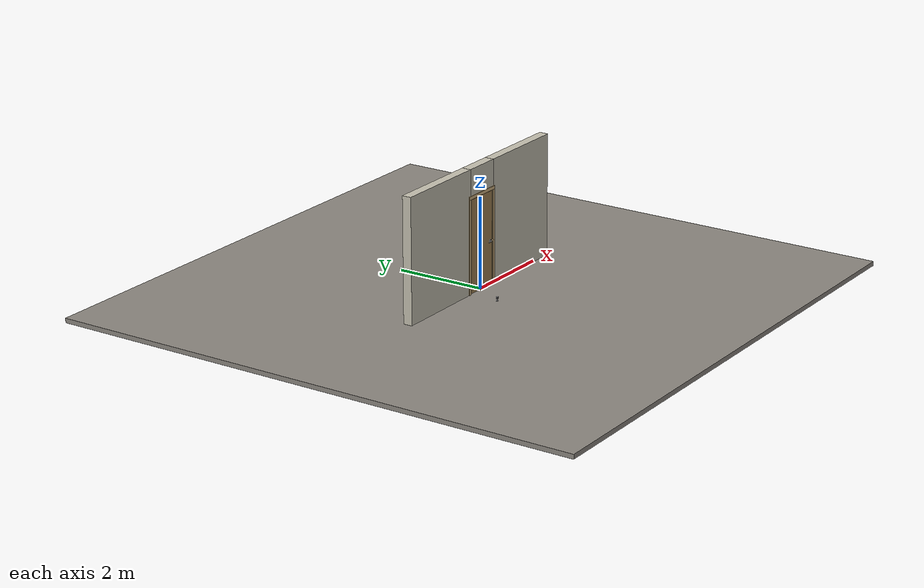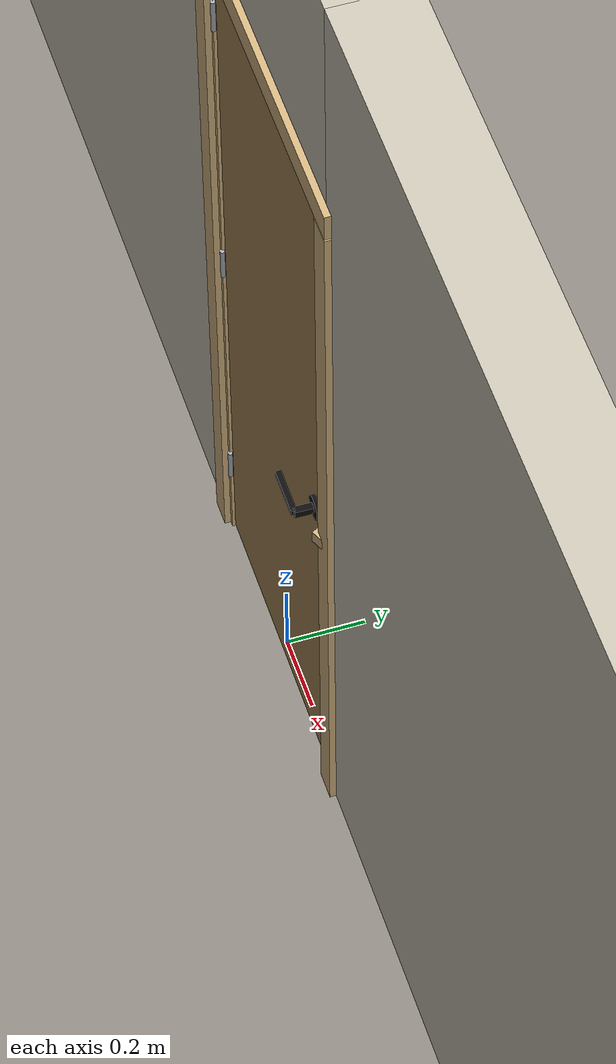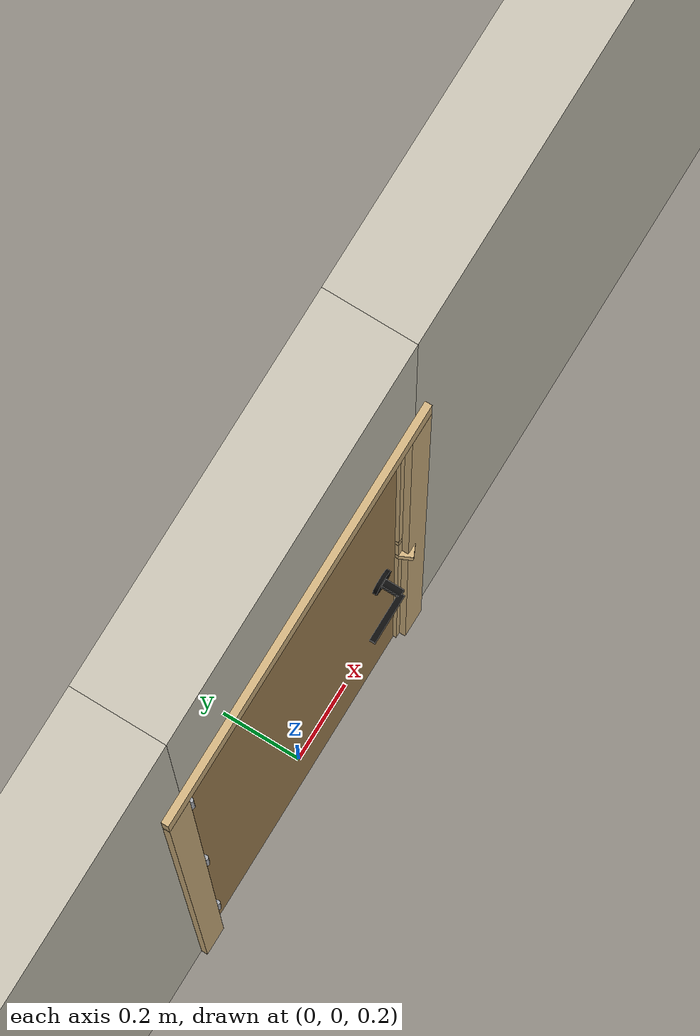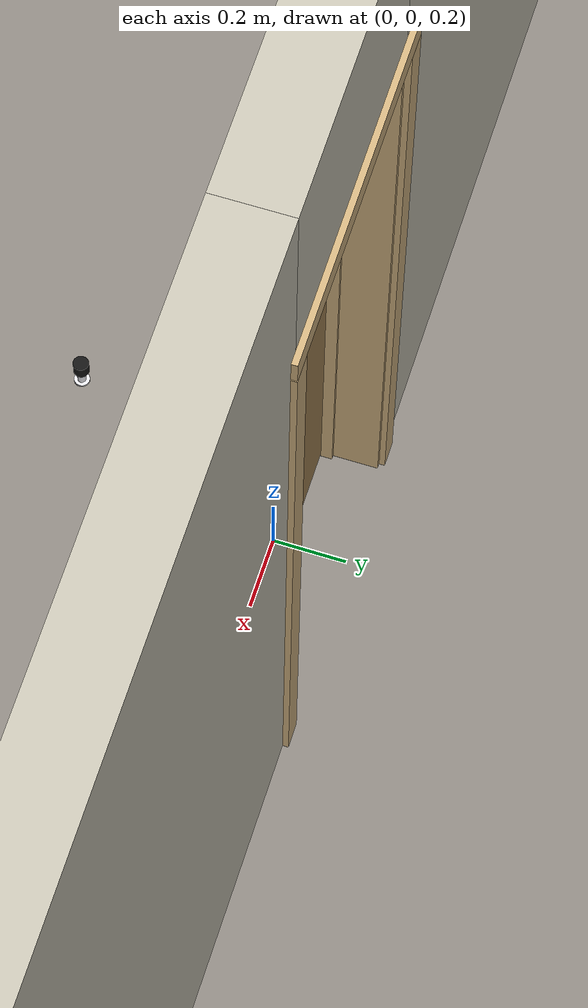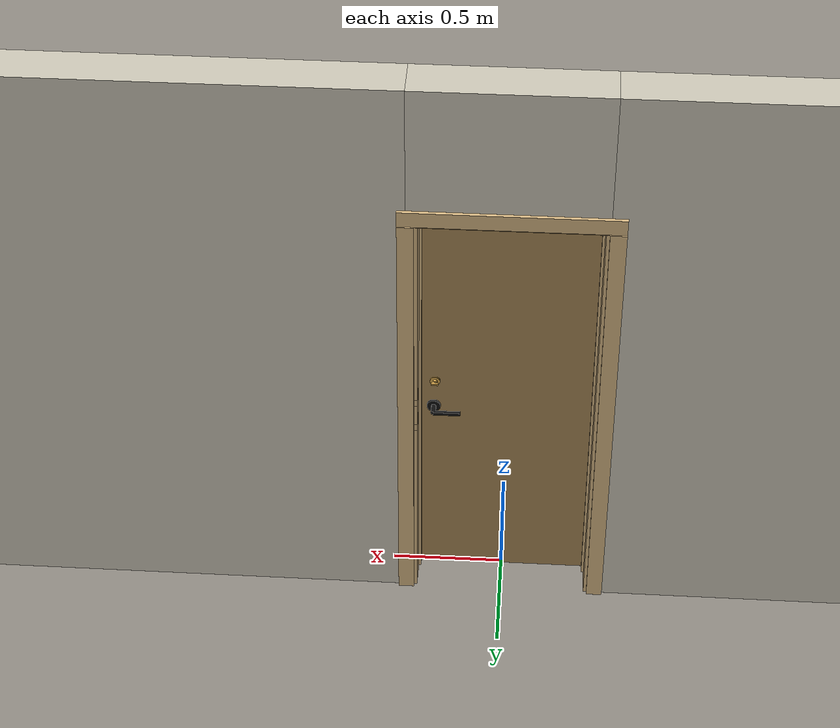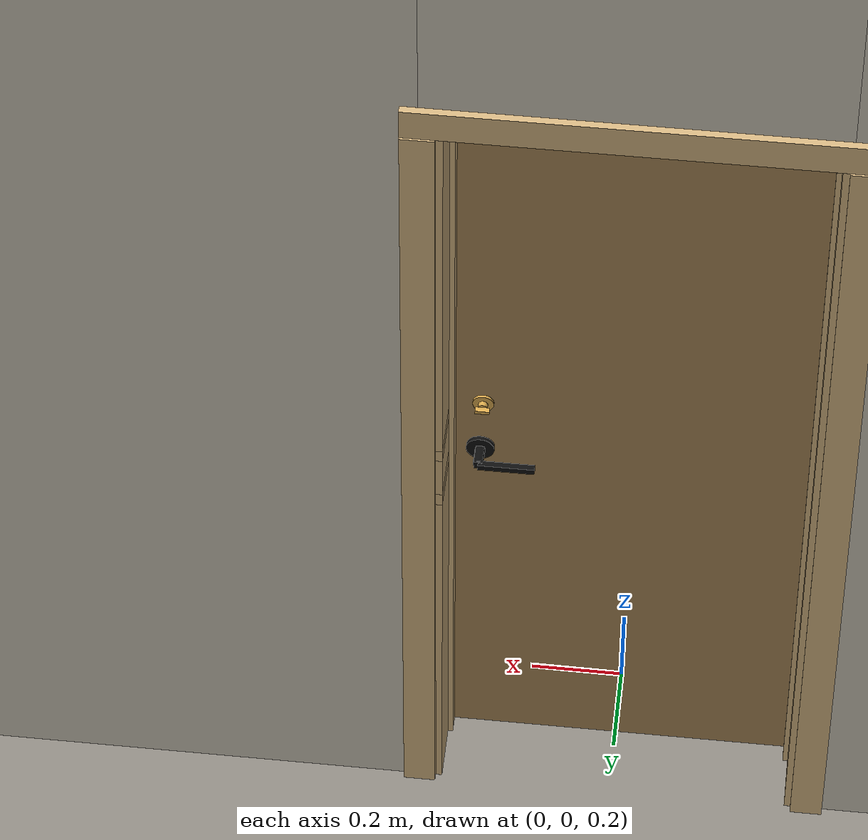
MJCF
<?xml version="1.0" ?>
<mujoco model="db0925_swing_single_full">
  <compiler angle="radian" meshdir="../../hardware" texturedir="../../textures" autolimits="true" inertiafromgeom="false"/>
  <option timestep="0.002" integrator="implicitfast" cone="elliptic" impratio="10" noslip_iterations="3">
    <flag multiccd="enable"/>
  </option>
  <size memory="16M"/>
  <default>
    <geom condim="4" solref="0.005 1" solimp="0.95 0.99 0.001"/>
    <joint solreflimit="0.005 1" solimplimit="0.95 0.99 0.001"/>
    <tendon solreflimit="0.005 1"/>
    <equality solref="0.002 1"/>
  </default>
  <visual>
    <headlight ambient="0.4 0.4 0.4" diffuse="0.7 0.7 0.7" specular="0.2 0.2 0.2"/>
    <quality shadowsize="4096"/>
    <map znear="0.01" zfar="60"/>
  </visual>
  <asset>
    <mesh name="hinge_96510cf394" file="hinge_96510cf394.obj"/>
    <mesh name="hinge_jamb_7fd4ca52b2" file="hinge_jamb_7fd4ca52b2.obj"/>
    <mesh name="lever_57205841c3" file="lever_57205841c3.obj"/>
    <mesh name="thumbturn_eb5c9899a3" file="thumbturn_eb5c9899a3.obj"/>
    <material name="mat_floor" rgba="0.55 0.53 0.5 1" specular="0.2" shininess="0.15" reflectance="0"/>
    <material name="mat_wall" rgba="0.78 0.76 0.7 1" specular="0.2" shininess="0.1" reflectance="0"/>
    <material name="mat_leaf" rgba="0.636 0.514 0.322 1" specular="0.2" shininess="0.5" reflectance="0"/>
    <material name="mat_hinge" rgba="0.65 0.66 0.68 1" specular="0.74" shininess="0.5" reflectance="0.36"/>
    <material name="mat_op_black_matte_metal" rgba="0.05 0.05 0.05 1" specular="0.38" shininess="0.3" reflectance="0.12"/>
    <material name="mat_trim" rgba="0.85 0.66 0.3 1" specular="0.8" shininess="0.75" reflectance="0.4"/>
    <material name="mat_bolt" rgba="0.85 0.66 0.3 1" specular="0.8" shininess="0.75" reflectance="0.4"/>
    <material name="mat_deadbolt" rgba="0.85 0.66 0.3 1" specular="0.8" shininess="0.75" reflectance="0.4"/>
    <material name="mat_frame" rgba="0.82 0.7 0.5 1" specular="0.2" shininess="0.45" reflectance="0"/>
    <material name="mat_bumper_stop" rgba="0.08 0.08 0.08 1" specular="0.2" shininess="0.1" reflectance="0"/>
    <material name="mat_stop_base" rgba="0.9 0.9 0.92 1" specular="0.8" shininess="0.9" reflectance="0.4"/>
    <texture name="skybox" type="skybox" builtin="gradient" rgb1="0.6 0.7 0.85" rgb2="0.9 0.92 0.95" width="256" height="256"/>
  </asset>
  <worldbody>
    <light name="sun" pos="1.5 -2.5 4" dir="-0.3 0.5 -0.8" directional="true" diffuse="0.8 0.8 0.8" specular="0.3 0.3 0.3" castshadow="true"/>
    <light name="fill" pos="-1.5 2.5 3" dir="0.3 -0.5 -0.7" directional="true" diffuse="0.35 0.35 0.4" castshadow="false"/>
    <camera name="robot_view" pos="0 -2.466687 1.734312" xyaxes="1 0 0 0 0.26963 0.962964" fovy="52"/>
    <camera name="far_view" pos="0 2.617687 1.734312" xyaxes="-1 0 0 0 -0.26963 0.962964" fovy="52"/>
    <camera name="iso" pos="1.932062 -2.059938 2.141063" xyaxes="0.741536 0.670913 0 -0.242917 0.268487 0.932151" fovy="46"/>
    <camera name="detail_handle" pos="0.4045 -0.8725 1.245" xyaxes="0.97561 0.219512 0 -0.070934 0.315262 0.94635" fovy="38"/>
    <geom name="floor" type="box" size="6 6 0.05" pos="0 0 -0.05" material="mat_floor" group="0" contype="1" conaffinity="1" friction="0.8 0.005 0.0001" density="2400"/>
    <geom name="wall_left" type="box" size="1.04825 0.1 1.35" pos="-1.45175 0.0755 1.35" material="mat_wall" group="0" contype="1" conaffinity="1" friction="0.6 0.005 0.0001" density="800"/>
    <geom name="wall_right" type="box" size="1.03325 0.1 1.35" pos="1.46675 0.0755 1.35" material="mat_wall" group="0" contype="1" conaffinity="1" friction="0.6 0.005 0.0001" density="800"/>
    <geom name="wall_header" type="box" size="0.4185 0.1 0.303" pos="0.015 0.0755 2.397" material="mat_wall" group="0" contype="1" conaffinity="1" friction="0.6 0.005 0.0001" density="800"/>
    <geom name="hinge_0_jamb" type="mesh" mesh="hinge_jamb_7fd4ca52b2" pos="-0.3815 -0.0245 0.259" material="mat_hinge" group="1" contype="0" conaffinity="0" density="7850"/>
    <geom name="hinge_1_jamb" type="mesh" mesh="hinge_jamb_7fd4ca52b2" pos="-0.3815 -0.0245 1.025" material="mat_hinge" group="1" contype="0" conaffinity="0" density="7850"/>
    <geom name="hinge_2_jamb" type="mesh" mesh="hinge_jamb_7fd4ca52b2" pos="-0.3815 -0.0245 1.861" material="mat_hinge" group="1" contype="0" conaffinity="0" density="7850"/>
    <geom name="leaf_deadbolt_strike_b" type="box" size="0.0155 0.003 0.0005" pos="0.384 0 1.0865" quat="-0.5 -0.5 0.5 0.5" material="mat_deadbolt" group="1" contype="0" conaffinity="0" density="7800"/>
    <geom name="leaf_deadbolt_strike_l" type="box" size="0.003 0.0155 0.0005" pos="0.384 0.0125 1.105" quat="-0.5 -0.5 0.5 0.5" material="mat_deadbolt" group="1" contype="0" conaffinity="0" density="7800"/>
    <geom name="leaf_deadbolt_strike_t" type="box" size="0.0155 0.003 0.0005" pos="0.384 0 1.1235" quat="-0.5 -0.5 0.5 0.5" material="mat_deadbolt" group="1" contype="0" conaffinity="0" density="7800"/>
    <geom name="leaf_deadbolt_strike_r" type="box" size="0.003 0.0155 0.0005" pos="0.384 -0.0125 1.105" quat="-0.5 -0.5 0.5 0.5" material="mat_deadbolt" group="1" contype="0" conaffinity="0" density="7800"/>
    <geom name="jamb_hinge" type="box" size="0.0095 0.1 1.0225" pos="-0.394 0.0755 1.0225" material="mat_frame" group="0" contype="1" conaffinity="1" friction="0.6 0.005 0.0001" density="400"/>
    <geom name="strike_965_wall_n" type="box" size="0.0245 0.083825 0.0167" pos="0.409 0.091675 0.965" material="mat_frame" group="0" contype="1" conaffinity="1" friction="0.6 0.005 0.0001" density="400"/>
    <geom name="strike_965_wall_p" type="box" size="0.0245 0.008 0.0167" pos="0.409 -0.01585 0.965" material="mat_frame" group="0" contype="1" conaffinity="1" friction="0.6 0.005 0.0001" density="400"/>
    <geom name="strike_965_ramp" type="box" size="0.0245 0.01649 0.0167" pos="0.413636 -0.028673 0.965" quat="0.977148 0 0 0.212558" material="mat_frame" group="0" contype="1" conaffinity="1" friction="0.12 0.005 0.0001" density="400"/>
    <geom name="strike_965_back" type="box" size="0.01615 0.00785 0.0167" pos="0.41735 0 0.965" material="mat_frame" group="0" contype="1" conaffinity="1" friction="0.6 0.005 0.0001" density="400"/>
    <geom name="strike_1105_wall_n" type="box" size="0.0245 0.083 0.0155" pos="0.409 0.0925 1.105" material="mat_frame" group="0" contype="1" conaffinity="1" friction="0.6 0.005 0.0001" density="400"/>
    <geom name="strike_1105_wall_p" type="box" size="0.0245 0.0075 0.0155" pos="0.409 -0.017 1.105" material="mat_frame" group="0" contype="1" conaffinity="1" friction="0.6 0.005 0.0001" density="400"/>
    <geom name="strike_1105_back" type="box" size="0.0098 0.0095 0.0155" pos="0.4237 0 1.105" material="mat_frame" group="0" contype="1" conaffinity="1" friction="0.6 0.005 0.0001" density="400"/>
    <geom name="jamb_strike_0" type="box" size="0.0245 0.1 0.47415" pos="0.409 0.0755 0.47415" material="mat_frame" group="0" contype="1" conaffinity="1" friction="0.6 0.005 0.0001" density="400"/>
    <geom name="jamb_strike_1" type="box" size="0.0245 0.1 0.0539" pos="0.409 0.0755 1.0356" material="mat_frame" group="0" contype="1" conaffinity="1" friction="0.6 0.005 0.0001" density="400"/>
    <geom name="jamb_strike_2" type="box" size="0.0245 0.1 0.46225" pos="0.409 0.0755 1.58275" material="mat_frame" group="0" contype="1" conaffinity="1" friction="0.6 0.005 0.0001" density="400"/>
    <geom name="jamb_head" type="box" size="0.4185 0.1 0.0095" pos="0.015 0.0755 2.0545" material="mat_frame" group="0" contype="1" conaffinity="1" friction="0.6 0.005 0.0001" density="400"/>
    <geom name="head_stud" type="box" size="0.4185 0.1 0.015" pos="0.015 0.0755 2.079" material="mat_wall" group="0" contype="1" conaffinity="1" friction="0.6 0.005 0.0001" density="500"/>
    <geom name="stop_hinge" type="box" size="0.0055 0.016 1.0225" pos="-0.379 0.034 1.0225" material="mat_frame" group="0" contype="1" conaffinity="1" friction="0.6 0.005 0.0001" density="400"/>
    <geom name="stop_strike" type="box" size="0.0055 0.016 1.0225" pos="0.379 0.034 1.0225" material="mat_frame" group="0" contype="1" conaffinity="1" friction="0.6 0.005 0.0001" density="400"/>
    <geom name="stop_head" type="box" size="0.3845 0.016 0.0055" pos="0 0.034 2.0395" material="mat_frame" group="0" contype="1" conaffinity="1" friction="0.6 0.005 0.0001" density="400"/>
    <geom name="casing_l_n" type="box" size="0.035 0.008 1.032" pos="-0.4335 -0.0325 1.0225" material="mat_frame" group="2" contype="0" conaffinity="0" density="400"/>
    <geom name="casing_r_n" type="box" size="0.035 0.008 1.032" pos="0.4335 -0.0325 1.0225" material="mat_frame" group="2" contype="0" conaffinity="0" density="400"/>
    <geom name="casing_h_n" type="box" size="0.4685 0.008 0.035" pos="0 -0.0325 2.094" material="mat_frame" group="2" contype="0" conaffinity="0" density="400"/>
    <geom name="casing_l_p" type="box" size="0.035 0.008 1.032" pos="-0.4335 0.1835 1.0225" material="mat_frame" group="2" contype="0" conaffinity="0" density="400"/>
    <geom name="casing_r_p" type="box" size="0.035 0.008 1.032" pos="0.4335 0.1835 1.0225" material="mat_frame" group="2" contype="0" conaffinity="0" density="400"/>
    <geom name="casing_h_p" type="box" size="0.4685 0.008 0.035" pos="0 0.1835 2.094" material="mat_frame" group="2" contype="0" conaffinity="0" density="400"/>
    <geom name="door_stop_base" type="cylinder" size="0.022 0.003" pos="-0.3975 -0.6722 0.003" material="mat_stop_base" group="0" contype="1" conaffinity="1" friction="0.6 0.005 0.0001" density="7850"/>
    <geom name="door_stop_post" type="cylinder" size="0.012 0.0245" pos="-0.3975 -0.6722 0.0305" material="mat_stop_base" group="0" contype="1" conaffinity="1" friction="0.6 0.005 0.0001" density="7850"/>
    <geom name="door_stop_bumper" type="cylinder" size="0.022 0.02" pos="-0.3975 -0.6722 0.075" material="mat_bumper_stop" group="0" contype="1" conaffinity="1" friction="0.6 0.005 0.0001" density="1100"/>
    <site name="approach_point" pos="0 -1.5 0" quat="1 0 0 0" size="0.05" rgba="0.2 0.9 0.2 0.5" group="4"/>
    <site name="goal_point" pos="0 1.5 0" quat="1 0 0 0" size="0.05" rgba="0.2 0.9 0.2 0.5" group="4"/>
    <site name="door_plane_center" pos="0 0 1.0225" quat="1 0 0 0" size="0.02" rgba="0.2 0.9 0.2 0.5" group="4"/>
    <body name="leaf" pos="-0.3845 0 0">
      <inertial pos="0.380191 -0.000157 1.025258" mass="38.618229" quat="-0.49978 0.500374 -0.499621 -0.500225" diaginertia="1.914945899 13.317791099 15.224633041"/>
      <joint name="leaf_hinge" type="hinge" axis="0 0 -1" pos="0.003 -0.0245 0" limited="true" range="0 1.570796" damping="0.173726" frictionloss="6.594392" armature="0.02"/>
      <geom name="leaf_slab" type="box" size="0.381 0.0175 1.016" pos="0.384 0 1.025" material="mat_leaf" group="0" contype="1" conaffinity="1" friction="0.35 0.005 0.0001" density="1"/>
      <geom name="hinge_0" type="mesh" mesh="hinge_96510cf394" pos="0.003 -0.0245 0.259" material="mat_hinge" group="1" contype="0" conaffinity="0" density="7850"/>
      <geom name="hinge_1" type="mesh" mesh="hinge_96510cf394" pos="0.003 -0.0245 1.025" material="mat_hinge" group="1" contype="0" conaffinity="0" density="7850"/>
      <geom name="hinge_2" type="mesh" mesh="hinge_96510cf394" pos="0.003 -0.0245 1.861" material="mat_hinge" group="1" contype="0" conaffinity="0" density="7850"/>
      <geom name="leaf_latch_bolt_faceplate" type="box" size="0.0006 0.01235 0.0267" pos="0.7644 0 0.965" material="mat_bolt" group="1" contype="0" conaffinity="0" density="8500"/>
      <geom name="leaf_deadbolt_faceplate" type="box" size="0.0006 0.014 0.0245" pos="0.7644 0 1.105" material="mat_deadbolt" group="1" contype="0" conaffinity="0" density="8500"/>
      <site name="leaf_edge_mid" pos="0.765 0 1.016" quat="1 0 0 0" size="0.02" rgba="0.2 0.9 0.2 0.5" group="4"/>
      <body name="leaf_handle" pos="0.705 0 0.965">
        <inertial pos="-0.018609 0 0" mass="0.798454" quat="0.707107 0 0 -0.707107" diaginertia="0.001003601 0.002236545 0.003135681"/>
        <joint name="leaf_handle_hinge" type="hinge" axis="0 -1 0" limited="true" range="0 0.87" damping="0.212416" frictionloss="0.042" stiffness="1" springref="-0.35" armature="0.01"/>
        <geom name="leaf_handle_spindle" type="cylinder" size="0.006 0.0255" pos="0 0 0" quat="0.707107 -0.707107 0 0" material="mat_op_black_matte_metal" group="1" contype="0" conaffinity="0" density="7850"/>
        <geom name="leaf_handle_lever_n" type="mesh" mesh="lever_57205841c3" pos="0 -0.0175 0" quat="0.707107 0.707107 0 0" material="mat_op_black_matte_metal" group="1" contype="0" conaffinity="0" density="3000"/>
        <geom name="leaf_handle_lever_col_n" type="capsule" size="0.007 0.053" pos="-0.06 -0.0725 0" quat="0.707107 0 -0.707107 0" material="mat_op_black_matte_metal" group="3" contype="1" conaffinity="1" rgba="0.8 0.3 0.3 0.25" friction="0.7 0.01 0.0001" density="3000"/>
        <geom name="leaf_handle_hub_col_n" type="cylinder" size="0.012 0.022" pos="0 -0.0475 0" quat="0.707107 -0.707107 0 0" material="mat_op_black_matte_metal" group="3" contype="1" conaffinity="1" rgba="0.8 0.3 0.3 0.25" friction="0.6 0.005 0.0001" density="3000"/>
        <geom name="leaf_handle_lever_p" type="mesh" mesh="lever_57205841c3" pos="0 0.0175 0" quat="-0.707107 0.707107 0 0" material="mat_op_black_matte_metal" group="1" contype="0" conaffinity="0" density="3000"/>
        <geom name="leaf_handle_lever_col_p" type="capsule" size="0.007 0.053" pos="-0.06 0.0725 0" quat="0.707107 0 -0.707107 0" material="mat_op_black_matte_metal" group="3" contype="1" conaffinity="1" rgba="0.8 0.3 0.3 0.25" friction="0.7 0.01 0.0001" density="3000"/>
        <geom name="leaf_handle_hub_col_p" type="cylinder" size="0.012 0.022" pos="0 0.0475 0" quat="0.707107 -0.707107 0 0" material="mat_op_black_matte_metal" group="3" contype="1" conaffinity="1" rgba="0.8 0.3 0.3 0.25" friction="0.6 0.005 0.0001" density="3000"/>
        <site name="leaf_handle_grip_n" pos="-0.096 -0.0725 0" quat="1 0 0 0" size="0.012" rgba="0.2 0.9 0.2 0.5" group="4"/>
        <site name="leaf_handle_grip_p" pos="-0.096 0.0725 0" quat="1 0 0 0" size="0.012" rgba="0.2 0.9 0.2 0.5" group="4"/>
      </body>
      <body name="leaf_latch_bolt" pos="0.765 0 0.965">
        <inertial pos="-0.00865 0 0" mass="0.041419" quat="0.92388 -0.382683 0 0" diaginertia="0.000000798 0.000005598 0.000005598"/>
        <joint name="leaf_latch_bolt_slide" type="slide" axis="-1 0 0" limited="true" range="0 0.0127" damping="2" frictionloss="0.3" stiffness="300" springref="-0.008333" armature="0.1"/>
        <geom name="leaf_latch_bolt_capsule" type="capsule" size="0.00635 0.015" pos="-0.00865 0 0" quat="0.707107 0 0.707107 0" material="mat_bolt" group="0" contype="1" conaffinity="1" friction="0.2 0.005 0.0001" density="8500"/>
      </body>
      <body name="leaf_deadbolt" pos="0.765 0 1.105">
        <inertial pos="-0.0277 0 0" mass="0.18836" quat="0 0 0.707107 0.707107" diaginertia="0.000013829 0.000052194 0.000057986"/>
        <joint name="leaf_deadbolt_slide" type="slide" axis="-1 0 0" limited="true" range="0 0.0254" damping="5" frictionloss="1.5" armature="0.1" ref="0.0254"/>
        <geom name="leaf_deadbolt_box" type="box" size="0.0277 0.008 0.0125" pos="-0.0277 0 0" material="mat_deadbolt" group="0" contype="1" conaffinity="1" friction="0.3 0.005 0.0001" density="8500"/>
      </body>
      <body name="leaf_deadbolt_thumbturn" pos="0.7 0.0175 1.105">
        <inertial pos="0 0.012928 0" mass="0.178946" quat="0.707107 -0.000001 -0.000001 0.707107" diaginertia="0.000026045 0.000026215 0.000032438"/>
        <joint name="leaf_deadbolt_thumbturn_hinge" type="hinge" axis="0 -1 0" limited="true" range="0 1.5708" damping="0.05" frictionloss="0.3" armature="0.005" ref="1.5708"/>
        <geom name="leaf_deadbolt_thumbturn_mesh" type="mesh" mesh="thumbturn_eb5c9899a3" pos="0 0 0" quat="-0.499999 0.499999 0.500001 0.500001" material="mat_deadbolt" group="0" contype="1" conaffinity="1" friction="0.6 0.005 0.0001" density="7100"/>
        <geom name="leaf_deadbolt_thumbturn_col" type="box" size="0.006 0.012 0.016" pos="0 0.02 0" quat="0.707105 0 -0.707108 0" material="mat_deadbolt" group="3" contype="1" conaffinity="1" rgba="0.8 0.3 0.3 0.25" friction="0.6 0.005 0.0001" density="7100"/>
      </body>
    </body>
  </worldbody>
  <tendon>
    <fixed name="leaf_latch_bolt_coupling" limited="true" range="0 10">
      <joint joint="leaf_latch_bolt_slide" coef="1"/>
      <joint joint="leaf_handle_hinge" coef="-0.015679"/>
    </fixed>
  </tendon>
  <equality>
    <joint name="leaf_deadbolt_couple" joint1="leaf_deadbolt_slide" joint2="leaf_deadbolt_thumbturn_hinge" polycoef="0 0.01617 0 0 0" active="true"/>
  </equality>
  <contact>
    <exclude body1="leaf_deadbolt" body2="leaf_deadbolt_thumbturn"/>
  </contact>
  <sensor>
    <jointpos name="leaf_hinge_pos" joint="leaf_hinge"/>
    <jointvel name="leaf_hinge_vel" joint="leaf_hinge"/>
    <jointpos name="leaf_handle_hinge_pos" joint="leaf_handle_hinge"/>
    <jointvel name="leaf_handle_hinge_vel" joint="leaf_handle_hinge"/>
    <jointpos name="leaf_latch_bolt_slide_pos" joint="leaf_latch_bolt_slide"/>
    <jointvel name="leaf_latch_bolt_slide_vel" joint="leaf_latch_bolt_slide"/>
    <jointpos name="leaf_deadbolt_slide_pos" joint="leaf_deadbolt_slide"/>
    <jointvel name="leaf_deadbolt_slide_vel" joint="leaf_deadbolt_slide"/>
    <jointpos name="leaf_deadbolt_thumbturn_hinge_pos" joint="leaf_deadbolt_thumbturn_hinge"/>
    <jointvel name="leaf_deadbolt_thumbturn_hinge_vel" joint="leaf_deadbolt_thumbturn_hinge"/>
  </sensor>
</mujoco>
